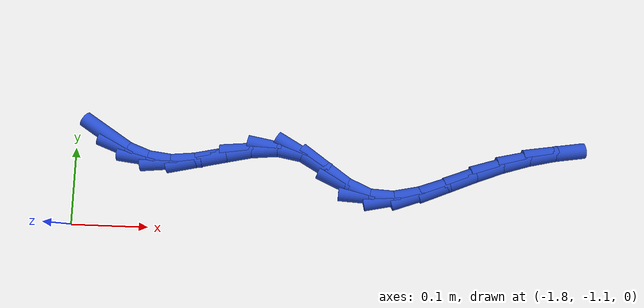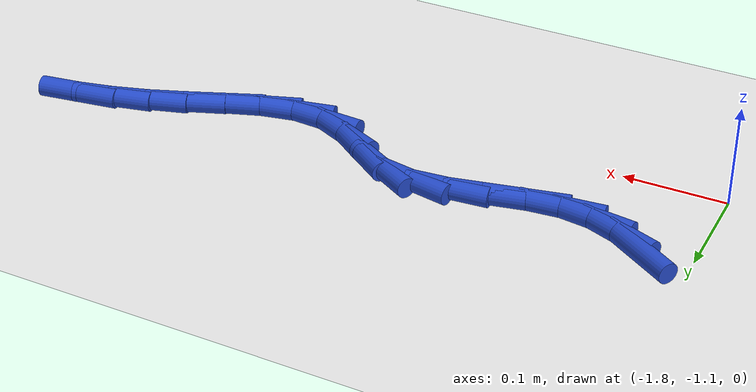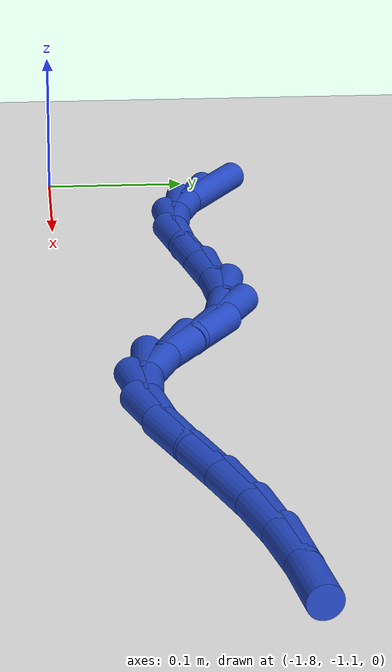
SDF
<sdf version="1.6">
 <world name="default">
  <model name="ground_plane">
   <static>1</static>
   <link name="link">
    <collision name="collision">
     <geometry><plane><normal>0 0 1</normal><size>100 100</size></plane></geometry>
     <surface><friction><ode><mu>100</mu><mu2>50</mu2></ode></friction></surface>
    </collision>
    <visual name="visual">
     <cast_shadows>0</cast_shadows>
     <geometry><plane><normal>0 0 1</normal><size>100 100</size></plane></geometry>
     <material>
      <script><uri>file://media/materials/scripts/gazebo.material</uri><name>Gazebo/WhiteGlow</name></script>
     </material>
    </visual>
   </link>
  </model>
  <model name="line">
   <link name="link_146">
    <pose>-1.7549475015621843 -0.9839310896393207 0.01 0 1.57 -0.5758623443496186</pose>
    <collision name="collision">
     <geometry><cylinder><radius>0.01</radius><length>0.08</length></cylinder></geometry>
    </collision>
    <visual name="visual">
     <material>
      <script><name>Gazebo/Blue</name><uri>file://media/materials/scripts/gazebo.material</uri></script>
     </material>
     <geometry><cylinder><radius>0.01</radius><length>0.08</length></cylinder></geometry>
    </visual>
   </link>
   <link name="link_147">
    <pose>-1.7299958093101457 -1.000131491750532 0.01 0 1.57 -0.36124064866685</pose>
    <collision name="collision">
     <geometry><cylinder><radius>0.01</radius><length>0.08</length></cylinder></geometry>
    </collision>
    <visual name="visual">
     <material>
      <script><name>Gazebo/Blue</name><uri>file://media/materials/scripts/gazebo.material</uri></script>
     </material>
     <geometry><cylinder><radius>0.01</radius><length>0.08</length></cylinder></geometry>
    </visual>
   </link>
   <link name="link_148">
    <pose>-1.7026497192459051 -1.0104633897699606 0.01 0 1.57 -0.12621130015786367</pose>
    <collision name="collision">
     <geometry><cylinder><radius>0.01</radius><length>0.08</length></cylinder></geometry>
    </collision>
    <visual name="visual">
     <material>
      <script><name>Gazebo/Blue</name><uri>file://media/materials/scripts/gazebo.material</uri></script>
     </material>
     <geometry><cylinder><radius>0.01</radius><length>0.08</length></cylinder></geometry>
    </visual>
   </link>
   <link name="link_149">
    <pose>-1.672680225801839 -1.0142660914262782 0.01 0 1.57 0.09586188022314084</pose>
    <collision name="collision">
     <geometry><cylinder><radius>0.01</radius><length>0.08</length></cylinder></geometry>
    </collision>
    <visual name="visual">
     <material>
      <script><name>Gazebo/Blue</name><uri>file://media/materials/scripts/gazebo.material</uri></script>
     </material>
     <geometry><cylinder><radius>0.01</radius><length>0.08</length></cylinder></geometry>
    </visual>
   </link>
   <link name="link_150">
    <pose>-1.6399321658080308 -1.011117149172104 0.01 0 1.57 0.2150734738232699</pose>
    <collision name="collision">
     <geometry><cylinder><radius>0.01</radius><length>0.08</length></cylinder></geometry>
    </collision>
    <visual name="visual">
     <material>
      <script><name>Gazebo/Blue</name><uri>file://media/materials/scripts/gazebo.material</uri></script>
     </material>
     <geometry><cylinder><radius>0.01</radius><length>0.08</length></cylinder></geometry>
    </visual>
   </link>
   <link name="link_151">
    <pose>-1.6051573975841662 -1.0035205248279573 0.01 0 1.57 0.21057295426030886</pose>
    <collision name="collision">
     <geometry><cylinder><radius>0.01</radius><length>0.08</length></cylinder></geometry>
    </collision>
    <visual name="visual">
     <material>
      <script><name>Gazebo/Blue</name><uri>file://media/materials/scripts/gazebo.material</uri></script>
     </material>
     <geometry><cylinder><radius>0.01</radius><length>0.08</length></cylinder></geometry>
    </visual>
   </link>
   <link name="link_152">
    <pose>-1.569716892073944 -0.9959454179837591 0.01 0 1.57 0.08752800552617387</pose>
    <collision name="collision">
     <geometry><cylinder><radius>0.01</radius><length>0.08</length></cylinder></geometry>
    </collision>
    <visual name="visual">
     <material>
      <script><name>Gazebo/Blue</name><uri>file://media/materials/scripts/gazebo.material</uri></script>
     </material>
     <geometry><cylinder><radius>0.01</radius><length>0.08</length></cylinder></geometry>
    </visual>
   </link>
   <link name="link_153">
    <pose>-1.5349829038281264 -0.9928974335999614 0.01 0 1.57 -0.18125913750680137</pose>
    <collision name="collision">
     <geometry><cylinder><radius>0.01</radius><length>0.08</length></cylinder></geometry>
    </collision>
    <visual name="visual">
     <material>
      <script><name>Gazebo/Blue</name><uri>file://media/materials/scripts/gazebo.material</uri></script>
     </material>
     <geometry><cylinder><radius>0.01</radius><length>0.08</length></cylinder></geometry>
    </visual>
   </link>
   <link name="link_154">
    <pose>-1.5023276873974742 -0.998882176637016 0.01 0 1.57 -0.5215212441470499</pose>
    <collision name="collision">
     <geometry><cylinder><radius>0.01</radius><length>0.08</length></cylinder></geometry>
    </collision>
    <visual name="visual">
     <material>
      <script><name>Gazebo/Blue</name><uri>file://media/materials/scripts/gazebo.material</uri></script>
     </material>
     <geometry><cylinder><radius>0.01</radius><length>0.08</length></cylinder></geometry>
    </visual>
   </link>
   <link name="link_155">
    <pose>-1.4725300667053072 -1.016003399073385 0.01 0 1.57 -0.6196673603382172</pose>
    <collision name="collision">
     <geometry><cylinder><radius>0.01</radius><length>0.08</length></cylinder></geometry>
    </collision>
    <visual name="visual">
     <material>
      <script><name>Gazebo/Blue</name><uri>file://media/materials/scripts/gazebo.material</uri></script>
     </material>
     <geometry><cylinder><radius>0.01</radius><length>0.08</length></cylinder></geometry>
    </visual>
   </link>
   <link name="link_156">
    <pose>-1.4439117478862982 -1.036419906646381 0.01 0 1.57 -0.42476554691737534</pose>
    <collision name="collision">
     <geometry><cylinder><radius>0.01</radius><length>0.08</length></cylinder></geometry>
    </collision>
    <visual name="visual">
     <material>
      <script><name>Gazebo/Blue</name><uri>file://media/materials/scripts/gazebo.material</uri></script>
     </material>
     <geometry><cylinder><radius>0.01</radius><length>0.08</length></cylinder></geometry>
    </visual>
   </link>
   <link name="link_157">
    <pose>-1.4141898309517498 -1.0498631506574863 0.01 0 1.57 -0.0591528912723151</pose>
    <collision name="collision">
     <geometry><cylinder><radius>0.01</radius><length>0.08</length></cylinder></geometry>
    </collision>
    <visual name="visual">
     <material>
      <script><name>Gazebo/Blue</name><uri>file://media/materials/scripts/gazebo.material</uri></script>
     </material>
     <geometry><cylinder><radius>0.01</radius><length>0.08</length></cylinder></geometry>
    </visual>
   </link>
   <link name="link_158">
    <pose>-1.3822969723866527 -1.051751908928977 0.01 0 1.57 0.20159278019090823</pose>
    <collision name="collision">
     <geometry><cylinder><radius>0.01</radius><length>0.08</length></cylinder></geometry>
    </collision>
    <visual name="visual">
     <material>
      <script><name>Gazebo/Blue</name><uri>file://media/materials/scripts/gazebo.material</uri></script>
     </material>
     <geometry><cylinder><radius>0.01</radius><length>0.08</length></cylinder></geometry>
    </visual>
   </link>
   <link name="link_159">
    <pose>-1.348745306641294 -1.0448949951896445 0.01 0 1.57 0.3416166033980192</pose>
    <collision name="collision">
     <geometry><cylinder><radius>0.01</radius><length>0.08</length></cylinder></geometry>
    </collision>
    <visual name="visual">
     <material>
      <script><name>Gazebo/Blue</name><uri>file://media/materials/scripts/gazebo.material</uri></script>
     </material>
     <geometry><cylinder><radius>0.01</radius><length>0.08</length></cylinder></geometry>
    </visual>
   </link>
   <link name="link_160">
    <pose>-1.314152570189121 -1.0325953122028282 0.01 0 1.57 0.39112380416399495</pose>
    <collision name="collision">
     <geometry><cylinder><radius>0.01</radius><length>0.08</length></cylinder></geometry>
    </collision>
    <visual name="visual">
     <material>
      <script><name>Gazebo/Blue</name><uri>file://media/materials/scripts/gazebo.material</uri></script>
     </material>
     <geometry><cylinder><radius>0.01</radius><length>0.08</length></cylinder></geometry>
    </visual>
   </link>
   <link name="link_161">
    <pose>-1.2791364995035832 -1.01815576273187 0.01 0 1.57 0.36540619306717764</pose>
    <collision name="collision">
     <geometry><cylinder><radius>0.01</radius><length>0.08</length></cylinder></geometry>
    </collision>
    <visual name="visual">
     <material>
      <script><name>Gazebo/Blue</name><uri>file://media/materials/scripts/gazebo.material</uri></script>
     </material>
     <geometry><cylinder><radius>0.01</radius><length>0.08</length></cylinder></geometry>
    </visual>
   </link>
   <link name="link_162">
    <pose>-1.2443038023749617 -1.0048292035159323 0.01 0 1.57 0.2961994166799362</pose>
    <collision name="collision">
     <geometry><cylinder><radius>0.01</radius><length>0.08</length></cylinder></geometry>
    </collision>
    <visual name="visual">
     <material>
      <script><name>Gazebo/Blue</name><uri>file://media/materials/scripts/gazebo.material</uri></script>
     </material>
     <geometry><cylinder><radius>0.01</radius><length>0.08</length></cylinder></geometry>
    </visual>
   </link>
   <link name="link_163">
    <pose>-1.2099237352306924 -0.9943372024893891 0.01 0 1.57 0.22278706756964892</pose>
    <collision name="collision">
     <geometry><cylinder><radius>0.01</radius><length>0.08</length></cylinder></geometry>
    </collision>
    <visual name="visual">
     <material>
      <script><name>Gazebo/Blue</name><uri>file://media/materials/scripts/gazebo.material</uri></script>
     </material>
     <geometry><cylinder><radius>0.01</radius><length>0.08</length></cylinder></geometry>
    </visual>
   </link>
   <link name="link_164">
    <pose>-1.1758737180286074 -0.986623249720372 0.01 0 1.57 0.14925047928931914</pose>
    <collision name="collision">
     <geometry><cylinder><radius>0.01</radius><length>0.08</length></cylinder></geometry>
    </collision>
    <visual name="visual">
     <material>
      <script><name>Gazebo/Blue</name><uri>file://media/materials/scripts/gazebo.material</uri></script>
     </material>
     <geometry><cylinder><radius>0.01</radius><length>0.08</length></cylinder></geometry>
    </visual>
   </link>
  </model>
 </world>
</sdf>
